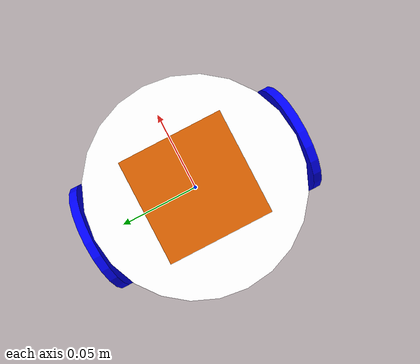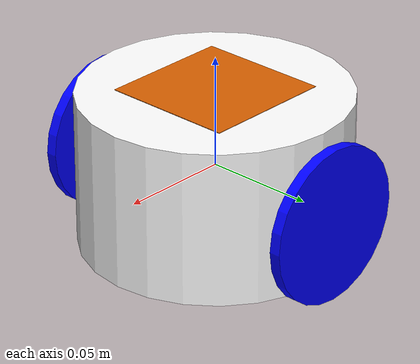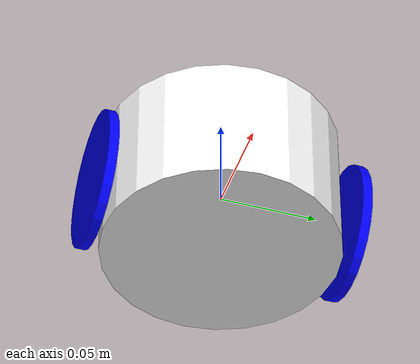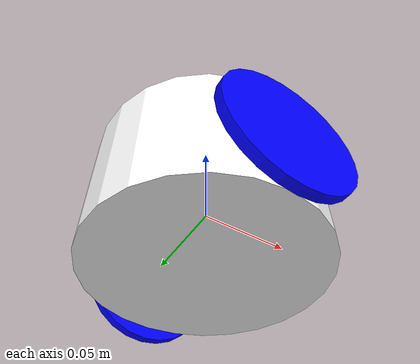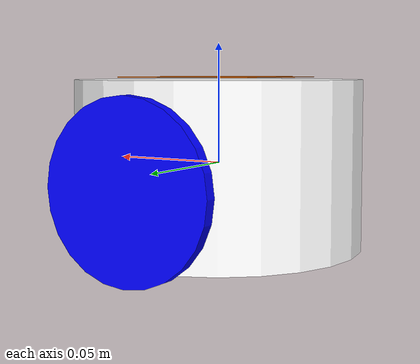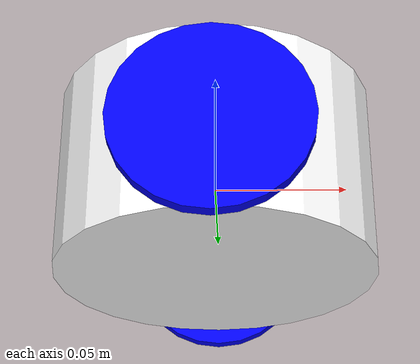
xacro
<?xml version="1.0"?>
<robot xmlns:xacro="http://www.ros.org/wiki/xacro"  name="kabot">
    <xacro:include filename="chassis.xacro"/>
    <xacro:include filename="wheel.xacro"/>

    <xacro:wheel name="left_wheel" origin="0 ${chassis_radius+0.005} -0.005" parent="chassis_link" direction="1"/>
    <xacro:wheel name="right_wheel" origin="0 -${chassis_radius+0.005} -0.005" parent="chassis_link" direction="1"/>

    <xacro:include filename="gazebo_control.xacro"/>
</robot>

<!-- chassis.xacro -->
<robot xmlns:xacro="http://www.ros.org/wiki/xacro">
  <xacro:include filename="inertial_macros.xacro"/>
  <xacro:include filename="materials.xacro"/>

  <xacro:property name="chassis_radius" value="0.06"/>
  <xacro:property name="chassis_height" value="0.07"/>

  <link name="base_link"></link>
  <link name="footprint_link"></link>
  <link name="chassis_link">
    <visual>
      <geometry>
        <cylinder radius="${chassis_radius}" length="${chassis_height}"/>
      </geometry>
      <material name="white"/>
    </visual>
    <collision>
      <geometry>
        <cylinder radius="${chassis_radius}" length="${chassis_height}"/>
      </geometry>
    </collision>
    <xacro:inertial_cylinder mass="0.1" radius="${chassis_radius}" length="${chassis_height}">
      <origin xyz="0 0 0" rpy="0 0 0"/>
    </xacro:inertial_cylinder>
  </link>

  <joint name="footprint_joint" type="fixed">
    <parent link="base_link"/>
    <child link="footprint_link"/>
    <origin xyz="0.0 0.0 -${chassis_height/2}"/>
  </joint>

  <joint name="chassis_joint" type="fixed">
    <parent link="base_link"/>
    <child link="chassis_link"/>
    <origin xyz="0.0 0.0 0.0"/>
  </joint>

  <gazebo reference="chassis_link">
    <material>Gazebo/Orange</material>
  </gazebo>
</robot>

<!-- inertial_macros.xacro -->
<robot xmlns:xacro="http://www.ros.org/wiki/xacro" >

    <!-- Specify some standard inertial calculations https://en.wikipedia.org/wiki/List_of_moments_of_inertia -->
    <!-- These make use of xacro's mathematical functionality -->

    <xacro:macro name="inertial_sphere" params="mass radius *origin">
        <inertial>
            <xacro:insert_block name="origin"/>
            <mass value="${mass}" />
            <inertia ixx="${(2/5) * mass * (radius*radius)}" ixy="0.0" ixz="0.0"
                    iyy="${(2/5) * mass * (radius*radius)}" iyz="0.0"
                    izz="${(2/5) * mass * (radius*radius)}" />
        </inertial>
    </xacro:macro>

    <xacro:macro name="inertial_box" params="mass x y z *origin">
        <inertial>
            <xacro:insert_block name="origin"/>
            <mass value="${mass}" />
            <inertia ixx="${(1/12) * mass * (y*y+z*z)}" ixy="0.0" ixz="0.0"
                    iyy="${(1/12) * mass * (x*x+z*z)}" iyz="0.0"
                    izz="${(1/12) * mass * (x*x+y*y)}" />
        </inertial>
    </xacro:macro>

    <xacro:macro name="inertial_cylinder" params="mass length radius *origin">
        <inertial>
            <xacro:insert_block name="origin"/>
            <mass value="${mass}" />
            <inertia ixx="${(1/12) * mass * (3*radius*radius + length*length)}" ixy="0.0" ixz="0.0"
                    iyy="${(1/12) * mass * (3*radius*radius + length*length)}" iyz="0.0"
                    izz="${(1/2) * mass * (radius*radius)}" />
        </inertial>
    </xacro:macro>
</robot>

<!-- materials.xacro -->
<robot xmlns:xacro="http://www.ros.org/wiki/xacro">

    <material name="white">
        <color rgba="1.0 1.0 1.0 1.0"/>
    </material>

    <material name="red">
        <color rgba="1.0 0.0 0.0 1.0"/>
    </material>

    <material name="green">
        <color rgba="0.0 1.0 0.0 1.0"/>
    </material>

    <material name="blue">
        <color rgba="0.0 0.0 1.0 1.0"/>
    </material>

    <material name="black">
        <color rgba="0.0 0.0 1.0 1.0"/>
    </material>

</robot>

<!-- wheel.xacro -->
<robot xmlns:xacro="http://www.ros.org/wiki/xacro">
    <xacro:include filename="inertial_macros.xacro"/>
    <xacro:macro name="wheel" params="origin name parent joint_type='continuous' direction wheel_radius=0.035 wheel_height=0.005">
        <link name="${name}_link">
            <visual>
                <geometry>
                    <cylinder radius="${wheel_radius}" length="${wheel_height}"/>
                </geometry>
                <material name="blue"/>
            </visual>
            <collision>
                <geometry>
                    <cylinder radius="${wheel_radius}" length="${wheel_height}"/>
                </geometry>
            </collision>
            <xacro:inertial_cylinder mass="0.1" radius="${wheel_radius}" length="${wheel_height}">
                <origin xyz="0 0 0" rpy="0 0 0"/>
            </xacro:inertial_cylinder>
        </link>

        <joint name="${name}_joint" type="${joint_type}">
            <parent link="${parent}"/>
            <child link="${name}_link"/>
            <origin xyz="${origin}" rpy="-${pi/2} 0 0"/>
            <axis xyz="0 0 ${direction}"/>
        </joint>

        <gazebo reference="${name}_link">
            <material>Gazebo/Blue</material>
        </gazebo>
    </xacro:macro>
</robot>

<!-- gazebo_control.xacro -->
<robot xmlns:xacro="http://www.ros.org/wiki/xacro">

    <!-- DIFF DRIVE SIMULATION -->
    <gazebo>
        <plugin name="diff_drive" filename="libgazebo_ros_diff_drive.so">
            <left_joint>left_wheel_joint</left_joint>
            <right_joint>right_wheel_joint</right_joint>
            <wheel_separation>0.13</wheel_separation>
            <wheel_diameter>0.07</wheel_diameter>

            <max_wheel_torque>1</max_wheel_torque>
            <max_wheel_acceleration>0.5</max_wheel_acceleration>

            <odometry_frame>odom</odometry_frame>
            <robot_base_frame>base_link</robot_base_frame>

            <publish_odom>true</publish_odom>
            <publish_odom_tf>true</publish_odom_tf>
            <publish_wheel_tf>true</publish_wheel_tf>
        </plugin>
    </gazebo>

    <!-- ARUCO SIMULATION-->
    <link name="aruco_link">
        <visual>
            <geometry>
                <mesh filename="file://$(find kabot_launcher)/description/meshes/aruco.dae" scale="0.03 0.03 0.03"/>
            </geometry>
        </visual>
        <collision>
            <geometry>
                <box size="0.05 0.05 0.01"/>
            </geometry>
        </collision>
        <xacro:inertial_box mass="0.0001" x="0.0001" y="0.0001" z="0.0001">
            <origin xyz="0 0 0" rpy="0 0 0"/>
        </xacro:inertial_box>
    </link>
    <gazebo reference="aruco_link">
        <material>aruco</material>
    </gazebo>
    <joint name="aruco_link" type="fixed">
        <parent link="chassis_link"/>
        <child link="aruco_link"/>
        <origin xyz="0 0 0.036" rpy="0 ${pi} 0"/>
    </joint>
</robot>
